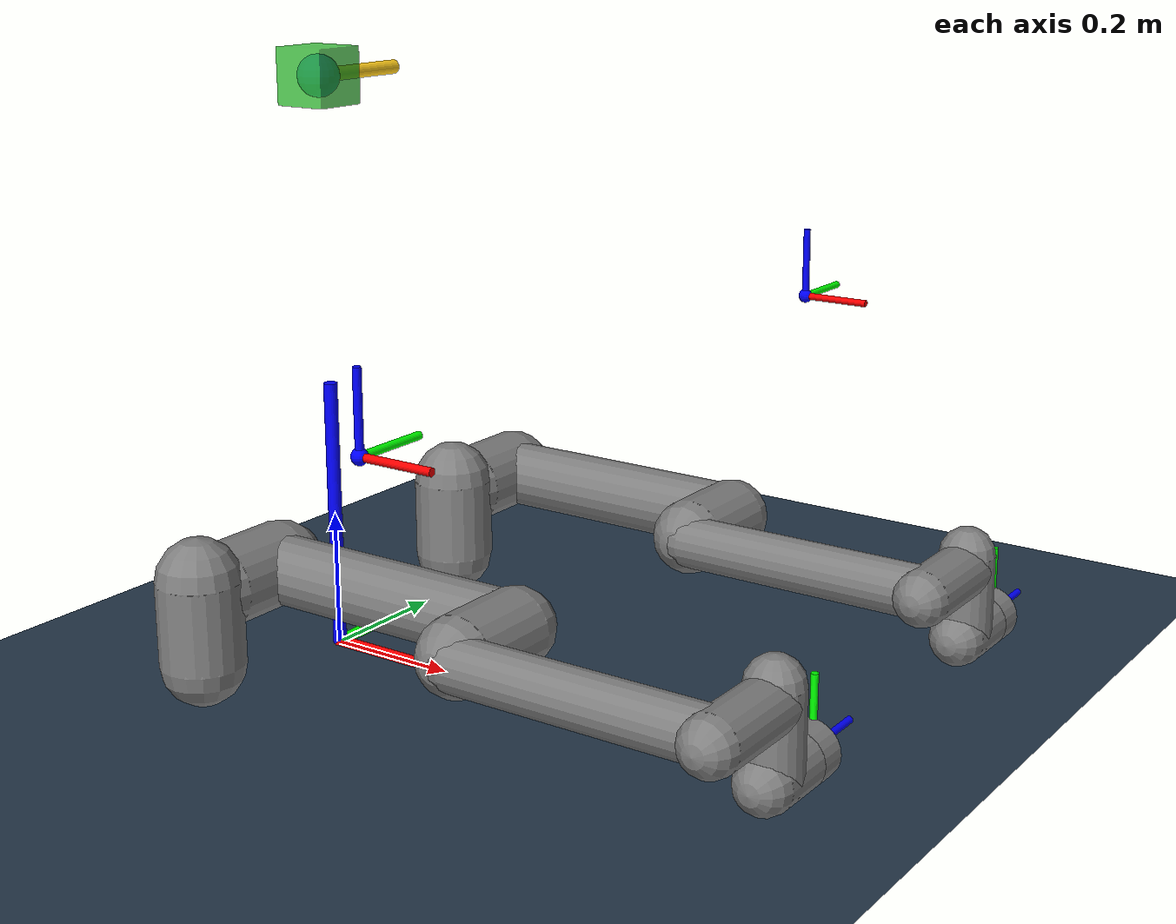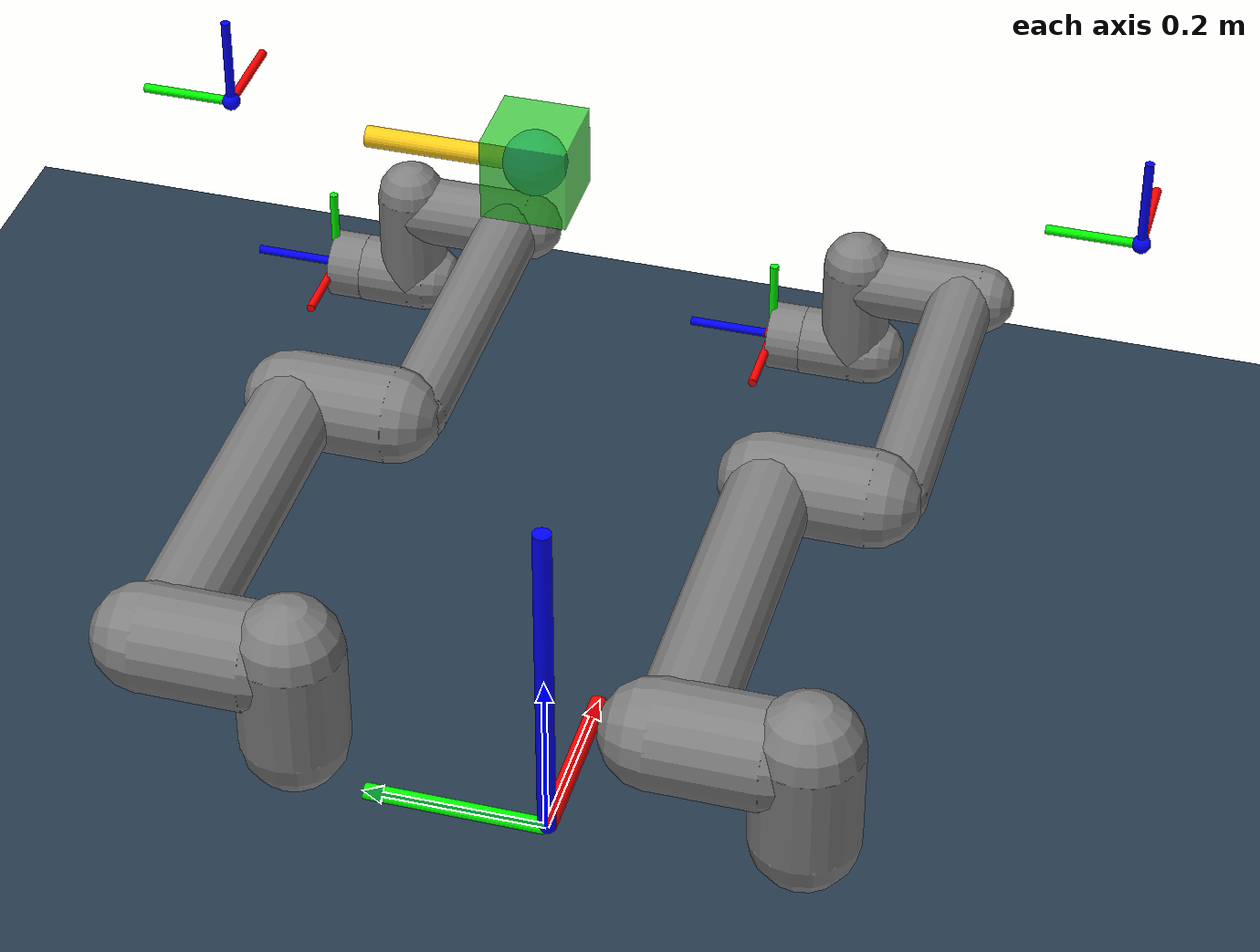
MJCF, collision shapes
<mujoco model="ur5e scene">
  <include file="dual_ur5e.xml"/>

  <statistic center="0.3 0 0.3" extent="0.8" meansize="0.08"/>

  <visual>
    <headlight diffuse="0.6 0.6 0.6" ambient="0.1 0.1 0.1" specular="0 0 0"/>
    <global azimuth="120" elevation="-20"/>
  </visual>

  <asset>
    <texture name="grid" type="2d" builtin="checker" rgb1=".2 .3 .4" rgb2=".1 0.15 0.2" width="512" height="512"
      mark="cross" markrgb=".8 .8 .8"/>
    <material name="grid" texture="grid" texrepeat="1 1" texuniform="true"/>
  </asset>

  <worldbody>
    <light pos="0 0 1.5" directional="true"/>
    <geom name="floor" size="1 1 0.01" type="plane" material="grid"/>
    <body name="right_target" pos="0.5 -0.5 .5" quat="1 0 0 0" mocap="true">
      <!-- X-axis arrow shaft -->
      <geom name="right_target_x_shaft" type="cylinder" size="0.005 0.05" pos="0.05 0 0" zaxis="1 0 0" rgba="1 0 0 1" contype="0" conaffinity="0" group="1"/>
      <!-- Y-axis arrow shaft -->
      <geom name="right_target_y_shaft" type="cylinder" size="0.005 0.05" pos="0 0.05 0" zaxis="0 1 0" rgba="0 1 0 1" contype="0" conaffinity="0" group="1"/>
      <!-- Z-axis arrow shaft -->
      <geom name="right_target_z_shaft" type="cylinder" size="0.005 0.05" pos="0 0 0.05" zaxis="0 0 1" rgba="0 0 1 1" contype="0" conaffinity="0" group="1"/>
      <site type="sphere" size="0.01" rgba="0 0 1 1" group="1"/>
    </body>
    <body name="left_target" pos="0.5 0.5 .5" quat="1 0 0 0" mocap="true">
      <!-- X-axis arrow shaft -->
      <geom name="left_target_x_shaft" type="cylinder" size="0.005 0.05" pos="0.05 0 0" zaxis="1 0 0" rgba="1 0 0 1" contype="0" conaffinity="0" group="1"/>
      <!-- Y-axis arrow shaft -->
      <geom name="left_target_y_shaft" type="cylinder" size="0.005 0.05" pos="0 0.05 0" zaxis="0 1 0" rgba="0 1 0 1" contype="0" conaffinity="0" group="1"/>
      <!-- Z-axis arrow shaft -->
      <geom name="left_target_z_shaft" type="cylinder" size="0.005 0.05" pos="0 0 0.05" zaxis="0 0 1" rgba="0 0 1 1" contype="0" conaffinity="0" group="1"/>
      <site type="sphere" size="0.01" rgba="0 0 1 1" group="1"/>
    </body>
    <body name="head_marker" pos="0 0 0.8382 " mocap="true">
      <geom name="head_marker_geom" type="box" size="0.04 0.04 0.04" rgba="0.2 0.8 0.2 0.8" contype="0" conaffinity="0" group="1"/>
      <geom name="head_marker_forward" type="cylinder" size="0.01 0.08" pos="0 0.08 0" zaxis="0 1 0" rgba="1 0.8 0.1 0.9" contype="0" conaffinity="0" group="1"/>
    </body>
    <body name="left_hand_marker" pos="0 0 0.8382 " mocap="true">
      <geom name="left_hand_marker_geom" type="sphere" size="0.03" rgba="0.1 0.4 0.9 0.9" contype="0" conaffinity="0" group="1"/>
    </body>
    <body name="right_hand_marker" pos="0 0 0.8382 " mocap="true">
      <geom name="right_hand_marker_geom" type="sphere" size="0.03" rgba="0.9 0.3 0.2 0.9" contype="0" conaffinity="0" group="1"/>
    </body>
    <!-- X-axis arrow shaft -->
    <geom name="world_x_shaft" type="cylinder" size="0.01 0.1" pos="0.1 0 0.0" zaxis="1 0 0" rgba="1 0 0 1" contype="0" conaffinity="0" group="1"/>
    <!-- Y-axis arrow shaft -->
    <geom name="world_y_shaft" type="cylinder" size="0.01 0.1" pos="0 0.1 0.0" zaxis="0 1 0" rgba="0 1 0 1" contype="0" conaffinity="0" group="1"/>
    <!-- Z-axis arrow shaft -->
    <geom name="world_z_shaft" type="cylinder" size="0.01 0.2" pos="0 0 0.2" zaxis="0 0 1" rgba="0 0 1 1" contype="0" conaffinity="0" group="1"/>
  </worldbody>
</mujoco>

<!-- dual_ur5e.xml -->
<mujoco model="dual_ur5e">
    <compiler angle="radian" meshdir="assets" autolimits="true" eulerseq="zyx"/>

    <option integrator="implicitfast"/>

    <default>
        <default class="ur5e">
            <default class="visual">
                <geom type="mesh" contype="0" conaffinity="0" group="2"/>
            </default>
            <default class="collision">
                <geom type="capsule" group="3"/>
                <default class="eef_collision">
                    <geom type="cylinder"/>
                </default>
            </default>
            <joint axis="0 1 0" range="-6.28319 6.28319"/>
            <default class="joint_limited">
                <joint range="-3.1415 3.1415"/>
            </default>
            <default class="position">
                <position ctrlrange="-6.2831 6.2831" kp="2000" kv="100" forcerange="-150 150"/>
                <default class="position_limited">
                    <position ctrlrange="-3.1415 3.1415"/>
                </default>
                <default class="position_small">
                    <position kp="500" kv="25" forcerange="-28 28"/>
                </default>
            </default>
        </default>
    </default>

    <asset>
        <material name="black" rgba="0.033 0.033 0.033 1"/>
        <material name="jointgray" rgba="0.278 0.278 0.278 1"/>
        <material name="linkgray" rgba="0.82 0.82 0.82 1"/>
        <material name="urblue" rgba="0.49 0.678 0.8 1"/>

        <mesh file="base_0.obj"/>
        <mesh file="base_1.obj"/>
        <mesh file="shoulder_0.obj"/>
        <mesh file="shoulder_1.obj"/>
        <mesh file="shoulder_2.obj"/>
        <mesh file="upperarm_0.obj"/>
        <mesh file="upperarm_1.obj"/>
        <mesh file="upperarm_2.obj"/>
        <mesh file="upperarm_3.obj"/>
        <mesh file="forearm_0.obj"/>
        <mesh file="forearm_1.obj"/>
        <mesh file="forearm_2.obj"/>
        <mesh file="forearm_3.obj"/>
        <mesh file="wrist1_0.obj"/>
        <mesh file="wrist1_1.obj"/>
        <mesh file="wrist1_2.obj"/>
        <mesh file="wrist2_0.obj"/>
        <mesh file="wrist2_1.obj"/>
        <mesh file="wrist2_2.obj"/>
        <mesh file="wrist3.obj"/>
    </asset>

    <worldbody>
        <light diffuse=".5 .5 .5" pos="0 0 4" dir="0 0 -1"/>

        <!-- Common world frame named 'base' -->
        <body name="base" pos="0 0 0">
            <!-- Optional: a visual for the world base -->
        </body>

        <!-- Left Arm -->
        <body name="left_robot_base" pos=" 0 0.275 0" quat="1 0 0 0" childclass="ur5e">
            <inertial mass="4" pos="0 0 0" diaginertia="0.00443333156 0.00443333156 0.0072"/>
            <geom mesh="base_0" material="black" class="visual"/>
            <geom mesh="base_1" material="jointgray" class="visual"/>
            <body name="left_shoulder_link" pos="0 0 0.163">
                <inertial mass="3.7" pos="0 0 0" diaginertia="0.0102675 0.0102675 0.00666"/>
                <joint name="left_shoulder_pan_joint" axis="0 0 1"/>
                <geom mesh="shoulder_0" material="urblue" class="visual"/>
                <geom mesh="shoulder_1" material="black" class="visual"/>
                <geom mesh="shoulder_2" material="jointgray" class="visual"/>
                <geom class="collision" size="0.06 0.06" pos="0 0 -0.04"/>
                <body name="left_upper_arm_link" pos="0 0.138 0" quat="1 0 1 0">
                    <inertial mass="8.393" pos="0 0 0.2125" diaginertia="0.133886 0.133886 0.0151074"/>
                    <joint name="left_shoulder_lift_joint"/>
                    <geom mesh="upperarm_0" material="linkgray" class="visual"/>
                    <geom mesh="upperarm_1" material="black" class="visual"/>
                    <geom mesh="upperarm_2" material="jointgray" class="visual"/>
                    <geom mesh="upperarm_3" material="urblue" class="visual"/>
                    <geom class="collision" pos="0 -0.04 0" quat="1 1 0 0" size="0.06 0.06"/>
                    <geom class="collision" size="0.05 0.2" pos="0 0 0.2"/>
                    <body name="left_forearm_link" pos="0 -0.131 0.425">
                        <inertial mass="2.275" pos="0 0 0.196" diaginertia="0.0311796 0.0311796 0.004095"/>
                        <joint name="left_elbow_joint" class="joint_limited"/>
                        <geom mesh="forearm_0" material="urblue" class="visual"/>
                        <geom mesh="forearm_1" material="linkgray" class="visual"/>
                        <geom mesh="forearm_2" material="black" class="visual"/>
                        <geom mesh="forearm_3" material="jointgray" class="visual"/>
                        <geom class="collision" pos="0 0.08 0" quat="1 1 0 0" size="0.055 0.06"/>
                        <geom class="collision" size="0.038 0.19" pos="0 0 0.2"/>
                        <body name="left_wrist_1_link" pos="0 0 0.392" quat="1 0 1 0">
                            <inertial mass="1.219" pos="0 0.127 0" diaginertia="0.0025599 0.0025599 0.0021942"/>
                            <joint name="left_wrist_1_joint"/>
                            <geom mesh="wrist1_0" material="black" class="visual"/>
                            <geom mesh="wrist1_1" material="urblue" class="visual"/>
                            <geom mesh="wrist1_2" material="jointgray" class="visual"/>
                            <geom class="collision" pos="0 0.05 0" quat="1 1 0 0" size="0.04 0.07"/>
                            <body name="left_wrist_2_link" pos="0 0.127 0">
                                <inertial mass="1.219" pos="0 0 0.1" diaginertia="0.0025599 0.0025599 0.0021942"/>
                                <joint name="left_wrist_2_joint" axis="0 0 1"/>
                                <geom mesh="wrist2_0" material="black" class="visual"/>
                                <geom mesh="wrist2_1" material="urblue" class="visual"/>
                                <geom mesh="wrist2_2" material="jointgray" class="visual"/>
                                <geom class="collision" size="0.04 0.06" pos="0 0 0.04"/>
                                <geom class="collision" pos="0 0.02 0.1" quat="1 1 0 0" size="0.04 0.04"/>
                                <body name="left_wrist_3_link" pos="0 0 0.1">
                                    <inertial mass="0.1879" pos="0 0.0771683 0" quat="1 0 0 1" diaginertia="0.000132134 9.90863e-05 9.90863e-05"/>
                                    <joint name="left_wrist_3_joint"/>
                                    <geom material="linkgray" mesh="wrist3" class="visual"/>
                                    <geom class="eef_collision" pos="0 0.08 0" quat="1 1 0 0" size="0.04 0.02"/>
                                    <site name="left_attachment_site" size="0.01" pos="0 0.1 0" quat="-1 1 1 1" rgba="1 0 0 1" group="1"/>
                                    <body name="left_tool0" pos="0 0.1 0" quat="0.70710678 -0.70710678 0 0">
                                        <geom name="left_tool0_x_shaft" type="cylinder" size="0.005 0.05" pos="0.05 0 0" zaxis="1 0 0" rgba="1 0 0 1" contype="0" conaffinity="0" group="1" class="visual"/>
                                        <geom name="left_tool0_y_shaft" type="cylinder" size="0.005 0.05" pos="0 0.05 0" zaxis="0 1 0" rgba="0 1 0 1" contype="0" conaffinity="0" group="1" class="visual"/>
                                        <geom name="left_tool0_z_shaft" type="cylinder" size="0.005 0.05" pos="0 0 0.05" zaxis="0 0 1" rgba="0 0 1 1" contype="0" conaffinity="0" group="1" class="visual"/>
                                        <site name="left_tool0_site" size="0.01" pos="0 0 0" rgba="0 1 0 1" group="1"/>
                                    </body>
                                </body>
                            </body>
                        </body>
                    </body>
                </body>
            </body>
        </body>
        <!-- Right Arm -->
        <body name="right_robot_base" pos="0 -0.275 0" quat="1 0 0. 0." childclass="ur5e">
            <inertial mass="4" pos="0 0 0" diaginertia="0.00443333156 0.00443333156 0.0072"/>
            <geom mesh="base_0" material="black" class="visual"/>
            <geom mesh="base_1" material="jointgray" class="visual"/>
            <body name="right_shoulder_link" pos="0 0 0.163">
                <inertial mass="3.7" pos="0 0 0" diaginertia="0.0102675 0.0102675 0.00666"/>
                <joint name="right_shoulder_pan_joint" axis="0 0 1"/>
                <geom mesh="shoulder_0" material="urblue" class="visual"/>
                <geom mesh="shoulder_1" material="black" class="visual"/>
                <geom mesh="shoulder_2" material="jointgray" class="visual"/>
                <geom class="collision" size="0.06 0.06" pos="0 0 -0.04"/>
                <body name="right_upper_arm_link" pos="0 0.138 0" quat="1 0 1 0">
                    <inertial mass="8.393" pos="0 0 0.2125" diaginertia="0.133886 0.133886 0.0151074"/>
                    <joint name="right_shoulder_lift_joint"/>
                    <geom mesh="upperarm_0" material="linkgray" class="visual"/>
                    <geom mesh="upperarm_1" material="black" class="visual"/>
                    <geom mesh="upperarm_2" material="jointgray" class="visual"/>
                    <geom mesh="upperarm_3" material="urblue" class="visual"/>
                    <geom class="collision" pos="0 -0.04 0" quat="1 1 0 0" size="0.06 0.06"/>
                    <geom class="collision" size="0.05 0.2" pos="0 0 0.2"/>
                    <body name="right_forearm_link" pos="0 -0.131 0.425">
                        <inertial mass="2.275" pos="0 0 0.196" diaginertia="0.0311796 0.0311796 0.004095"/>
                        <joint name="right_elbow_joint" class="joint_limited"/>
                        <geom mesh="forearm_0" material="urblue" class="visual"/>
                        <geom mesh="forearm_1" material="linkgray" class="visual"/>
                        <geom mesh="forearm_2" material="black" class="visual"/>
                        <geom mesh="forearm_3" material="jointgray" class="visual"/>
                        <geom class="collision" pos="0 0.08 0" quat="1 1 0 0" size="0.055 0.06"/>
                        <geom class="collision" size="0.038 0.19" pos="0 0 0.2"/>
                        <body name="right_wrist_1_link" pos="0 0 0.392" quat="1 0 1 0">
                            <inertial mass="1.219" pos="0 0.127 0" diaginertia="0.0025599 0.0025599 0.0021942"/>
                            <joint name="right_wrist_1_joint"/>
                            <geom mesh="wrist1_0" material="black" class="visual"/>
                            <geom mesh="wrist1_1" material="urblue" class="visual"/>
                            <geom mesh="wrist1_2" material="jointgray" class="visual"/>
                            <geom class="collision" pos="0 0.05 0" quat="1 1 0 0" size="0.04 0.07"/>
                            <body name="right_wrist_2_link" pos="0 0.127 0">
                                <inertial mass="1.219" pos="0 0 0.1" diaginertia="0.0025599 0.0025599 0.0021942"/>
                                <joint name="right_wrist_2_joint" axis="0 0 1"/>
                                <geom mesh="wrist2_0" material="black" class="visual"/>
                                <geom mesh="wrist2_1" material="urblue" class="visual"/>
                                <geom mesh="wrist2_2" material="jointgray" class="visual"/>
                                <geom class="collision" size="0.04 0.06" pos="0 0 0.04"/>
                                <geom class="collision" pos="0 0.02 0.1" quat="1 1 0 0" size="0.04 0.04"/>
                                <body name="right_wrist_3_link" pos="0 0 0.1">
                                    <inertial mass="0.1879" pos="0 0.0771683 0" quat="1 0 0 1" diaginertia="0.000132134 9.90863e-05 9.90863e-05"/>
                                    <joint name="right_wrist_3_joint"/>
                                    <geom material="linkgray" mesh="wrist3" class="visual"/>
                                    <geom class="eef_collision" pos="0 0.08 0" quat="1 1 0 0" size="0.04 0.02"/>
                                    <site name="right_attachment_site" size="0.01" pos="0 0.1 0" quat="-1 1 1 1" rgba="1 0 0 1" group="1"/>
                                    <body name="right_tool0" pos="0 0.1 0" quat="0.70710678 -0.70710678 0 0">
                                        <geom name="right_tool0_x_shaft" type="cylinder" size="0.005 0.05" pos="0.05 0 0" zaxis="1 0 0" rgba="1 0 0 1" contype="0" conaffinity="0" group="1" class="visual"/>
                                        <geom name="right_tool0_y_shaft" type="cylinder" size="0.005 0.05" pos="0 0.05 0" zaxis="0 1 0" rgba="0 1 0 1" contype="0" conaffinity="0" group="1" class="visual"/>
                                        <geom name="right_tool0_z_shaft" type="cylinder" size="0.005 0.05" pos="0 0 0.05" zaxis="0 0 1" rgba="0 0 1 1" contype="0" conaffinity="0" group="1" class="visual"/>
                                        <site name="right_tool0_site" size="0.01" pos="0 0 0" rgba="0 1 0 1" group="1"/>
                                    </body>
                                </body>
                            </body>
                        </body>
                    </body>
                </body>
            </body>
        </body>

    </worldbody>

    <actuator>
        <!-- Left Arm Actuators -->
        <position class="position" name="left_shoulder_pan_joint" joint="left_shoulder_pan_joint"/>
        <position class="position" name="left_shoulder_lift_joint" joint="left_shoulder_lift_joint"/>
        <position class="position_limited" name="left_elbow_joint" joint="left_elbow_joint"/>
        <position class="position_small" name="left_wrist_1_joint" joint="left_wrist_1_joint"/>
        <position class="position_small" name="left_wrist_2_joint" joint="left_wrist_2_joint"/>
        <position class="position_small" name="left_wrist_3_joint" joint="left_wrist_3_joint"/>
        <!-- Right Arm Actuators -->
        <position class="position" name="right_shoulder_pan_joint" joint="right_shoulder_pan_joint"/>
        <position class="position" name="right_shoulder_lift_joint" joint="right_shoulder_lift_joint"/>
        <position class="position_limited" name="right_elbow_joint" joint="right_elbow_joint"/>
        <position class="position_small" name="right_wrist_1_joint" joint="right_wrist_1_joint"/>
        <position class="position_small" name="right_wrist_2_joint" joint="right_wrist_2_joint"/>
        <position class="position_small" name="right_wrist_3_joint" joint="right_wrist_3_joint"/>
    </actuator>

    <keyframe>
        <key name="home"
                 qpos="2.88433112 -0.82903139  2.07572008 -0.67998028  1.52733763  2.61031443 3.3777357  -2.86530703 -1.99002441  1.0124655   1.77796691 -2.41553568"
                 ctrl="2.88433112 -0.82903139  2.07572008 -0.67998028  1.52733763  2.61031443 3.3777357  -2.86530703 -1.99002441  1.0124655   1.77796691 -2.41553568"/>
        <key name="zero"
                 qpos="0 0 0 0 0 0 0 0 0 0 0 0"
                 ctrl="0 0 0 0 0 0 0 0 0 0 0 0"/>
    </keyframe>
</mujoco>
